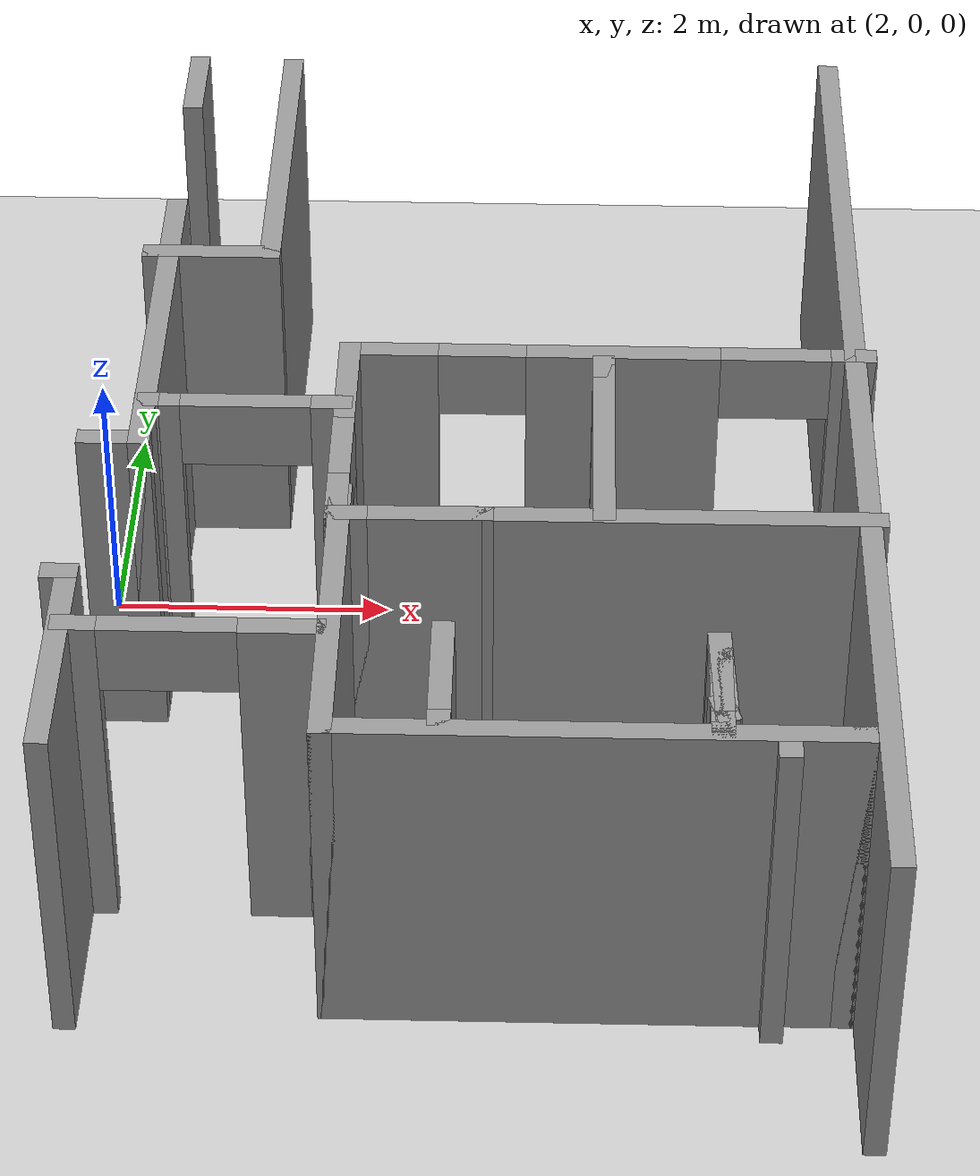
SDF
<sdf version="1.7">
 <world name="default">
  <model name="ground_plane">
   <static>1</static>
   <link name="link">
    <collision name="collision">
     <geometry><plane><normal>0 0 1</normal><size>100 100</size></plane></geometry>
     <surface>
      <contact><collide_bitmask>65535</collide_bitmask></contact>
      <friction><ode><mu>100</mu><mu2>50</mu2></ode></friction>
     </surface>
    </collision>
    <visual name="visual">
     <cast_shadows>0</cast_shadows>
     <geometry><plane><normal>0 0 1</normal><size>100 100</size></plane></geometry>
     <material>
      <script><uri>file://media/materials/scripts/gazebo.material</uri><name>Gazebo/Grey</name></script>
     </material>
    </visual>
   </link>
  </model>
  <model name="Floorplan4">
   <pose>0.528647 -1.59814 0 0 -0 0</pose>
   <link name="Wall_0">
    <collision name="Wall_0_Collision">
     <geometry><box><size>9 0.15 2.5</size></box></geometry>
     <pose>0 0 1.25 0 -0 0</pose>
    </collision>
    <visual name="Wall_0_Visual">
     <pose>0 0 1.25 0 -0 0</pose>
     <geometry><box><size>9 0.15 2.5</size></box></geometry>
     <material>
      <script><uri>file://media/materials/scripts/gazebo.material</uri><name>Gazebo/Grey</name></script>
      <ambient>1 1 1 1</ambient>
     </material>
     <meta><layer>0</layer></meta>
    </visual>
    <pose>6.77354 0.814241 0 0 -0 1.5708</pose>
   </link>
   <link name="Wall_11">
    <collision name="Wall_11_Collision">
     <geometry><box><size>0.75 0.15 2.5</size></box></geometry>
     <pose>0 0 1.25 0 -0 0</pose>
    </collision>
    <visual name="Wall_11_Visual">
     <pose>0 0 1.25 0 -0 0</pose>
     <geometry><box><size>0.75 0.15 2.5</size></box></geometry>
     <material>
      <script><uri>file://media/materials/scripts/gazebo.material</uri><name>Gazebo/Grey</name></script>
      <ambient>1 1 1 1</ambient>
     </material>
     <meta><layer>0</layer></meta>
    </visual>
    <pose>1.87688 4.95601 0 0 -0 1.5708</pose>
   </link>
   <link name="Wall_13">
    <collision name="Wall_13_Collision">
     <geometry><box><size>2.75 0.15 2.5</size></box></geometry>
     <pose>0 0 1.25 0 -0 0</pose>
    </collision>
    <visual name="Wall_13_Visual">
     <pose>0 0 1.25 0 -0 0</pose>
     <geometry><box><size>2.75 0.15 2.5</size></box></geometry>
     <material>
      <script><uri>file://media/materials/scripts/gazebo.material</uri><name>Gazebo/Grey</name></script>
      <ambient>1 1 1 1</ambient>
     </material>
     <meta><layer>0</layer></meta>
    </visual>
    <pose>2.60855 3.92948 0 0 -0 -1.5708</pose>
   </link>
   <link name="Wall_14">
    <collision name="Wall_14_Collision">
     <geometry><box><size>1 0.15 2.5</size></box></geometry>
     <pose>0 0 1.25 0 -0 0</pose>
    </collision>
    <visual name="Wall_14_Visual">
     <pose>0 0 1.25 0 -0 0</pose>
     <geometry><box><size>1 0.15 2.5</size></box></geometry>
     <material>
      <script><uri>file://media/materials/scripts/gazebo.material</uri><name>Gazebo/Grey</name></script>
      <ambient>1 1 1 1</ambient>
     </material>
     <meta><layer>0</layer></meta>
    </visual>
    <pose>2.18355 2.62948 0 0 -0 3.14159</pose>
   </link>
   <link name="Wall_15">
    <collision name="Wall_15_Collision">
     <geometry><box><size>0.15 0.15 2.5</size></box></geometry>
     <pose>0 0 1.25 0 -0 0</pose>
    </collision>
    <visual name="Wall_15_Visual">
     <pose>0 0 1.25 0 -0 0</pose>
     <geometry><box><size>0.15 0.15 2.5</size></box></geometry>
     <material>
      <script><uri>file://media/materials/scripts/gazebo.material</uri><name>Gazebo/Grey</name></script>
      <ambient>1 1 1 1</ambient>
     </material>
     <meta><layer>0</layer></meta>
    </visual>
    <pose>1.75855 2.62948 0 0 -0 0</pose>
   </link>
   <link name="Wall_17">
    <collision name="Wall_17_Collision">
     <geometry><box><size>3 0.15 2.5</size></box></geometry>
     <pose>0 0 1.25 0 -0 0</pose>
    </collision>
    <visual name="Wall_17_Visual">
     <pose>0 0 1.25 0 -0 0</pose>
     <geometry><box><size>3 0.15 2.5</size></box></geometry>
     <material>
      <script><uri>file://media/materials/scripts/gazebo.material</uri><name>Gazebo/Grey</name></script>
      <ambient>1 1 1 1</ambient>
     </material>
     <meta><layer>0</layer></meta>
    </visual>
    <pose>1.87688 1.80723 0 0 -0 -1.5708</pose>
   </link>
   <link name="Wall_18">
    <collision name="Wall_18_Collision">
     <geometry><box><size>0.5 0.15 2.5</size></box></geometry>
     <pose>0 0 1.25 0 -0 0</pose>
    </collision>
    <visual name="Wall_18_Visual">
     <pose>0 0 1.25 0 -0 0</pose>
     <geometry><box><size>0.5 0.15 2.5</size></box></geometry>
     <material>
      <script><uri>file://media/materials/scripts/gazebo.material</uri><name>Gazebo/Grey</name></script>
      <ambient>1 1 1 1</ambient>
     </material>
     <meta><layer>0</layer></meta>
    </visual>
    <pose>1.70188 0.38223 0 0 -0 3.14159</pose>
   </link>
   <link name="Wall_28">
    <collision name="Wall_28_Collision">
     <geometry><box><size>0.25 0.15 2.5</size></box></geometry>
     <pose>0 0 1.25 0 -0 0</pose>
    </collision>
    <visual name="Wall_28_Visual">
     <pose>0 0 1.25 0 -0 0</pose>
     <geometry><box><size>0.25 0.15 2.5</size></box></geometry>
     <material>
      <script><uri>file://media/materials/scripts/gazebo.material</uri><name>Gazebo/Grey</name></script>
      <ambient>1 1 1 1</ambient>
     </material>
     <meta><layer>0</layer></meta>
    </visual>
    <pose>1.49972 -1.05601 0 0 -0 0</pose>
   </link>
   <link name="Wall_29">
    <collision name="Wall_29_Collision">
     <geometry><box><size>1.75 0.15 2.5</size></box></geometry>
     <pose>0 0 1.25 0 -0 0</pose>
    </collision>
    <visual name="Wall_29_Visual">
     <pose>0 0 1.25 0 -0 0</pose>
     <geometry><box><size>1.75 0.15 2.5</size></box></geometry>
     <material>
      <script><uri>file://media/materials/scripts/gazebo.material</uri><name>Gazebo/Grey</name></script>
      <ambient>1 1 1 1</ambient>
     </material>
     <meta><layer>0</layer></meta>
    </visual>
    <pose>1.54972 -1.85601 0 0 -0 -1.5708</pose>
   </link>
   <link name="Wall_3">
    <collision name="Wall_3_Collision">
     <geometry><box><size>0.15 0.15 2.5</size></box></geometry>
     <pose>0 0 1.25 0 -0 0</pose>
    </collision>
    <visual name="Wall_3_Visual">
     <pose>0 0 1.25 0 -0 0</pose>
     <geometry><box><size>0.15 0.15 2.5</size></box></geometry>
     <material>
      <script><uri>file://media/materials/scripts/gazebo.material</uri><name>Gazebo/Grey</name></script>
      <ambient>1 1 1 1</ambient>
     </material>
     <meta><layer>0</layer></meta>
    </visual>
    <pose>6.15788 -2.66213 0 0 -0 0</pose>
   </link>
   <link name="Wall_37">
    <pose>2.37196 -1.57624 0 0 -0 0</pose>
    <visual name="Wall_37_Visual_0">
     <pose>-0.726541 0 1.25 0 -0 0</pose>
     <geometry><box><size>0.296918 0.15 2.5</size></box></geometry>
     <material>
      <script><uri>file://media/materials/scripts/gazebo.material</uri><name>Gazebo/Grey</name></script>
      <ambient>1 1 1 1</ambient>
     </material>
     <meta><layer>0</layer></meta>
    </visual>
    <collision name="Wall_37_Collision_0">
     <geometry><box><size>0.296918 0.15 2.5</size></box></geometry>
     <pose>-0.726541 0 1.25 0 -0 0</pose>
    </collision>
    <visual name="Wall_37_Visual_1">
     <pose>0.598459 0 1.25 0 -0 0</pose>
     <geometry><box><size>0.553082 0.15 2.5</size></box></geometry>
     <material>
      <script><uri>file://media/materials/scripts/gazebo.material</uri><name>Gazebo/Grey</name></script>
      <ambient>1 1 1 1</ambient>
     </material>
     <meta><layer>0</layer></meta>
    </visual>
    <collision name="Wall_37_Collision_1">
     <geometry><box><size>0.553082 0.15 2.5</size></box></geometry>
     <pose>0.598459 0 1.25 0 -0 0</pose>
    </collision>
    <visual name="Wall_37_Visual_2">
     <pose>-0.128082 0 2.25 0 -0 0</pose>
     <geometry><box><size>0.9 0.15 0.5</size></box></geometry>
     <material>
      <script><uri>file://media/materials/scripts/gazebo.material</uri><name>Gazebo/Grey</name></script>
      <ambient>1 1 1 1</ambient>
     </material>
     <meta><layer>0</layer></meta>
    </visual>
    <collision name="Wall_37_Collision_2">
     <geometry><box><size>0.9 0.15 0.5</size></box></geometry>
     <pose>-0.128082 0 2.25 0 -0 0</pose>
    </collision>
   </link>
   <link name="Wall_38">
    <collision name="Wall_38_Collision">
     <geometry><box><size>0.15 0.15 2.5</size></box></geometry>
     <pose>0 0 1.25 0 -0 0</pose>
    </collision>
    <visual name="Wall_38_Visual">
     <pose>0 0 1.25 0 -0 0</pose>
     <geometry><box><size>0.15 0.15 2.5</size></box></geometry>
     <material>
      <script><uri>file://media/materials/scripts/gazebo.material</uri><name>Gazebo/Grey</name></script>
      <ambient>1 1 1 1</ambient>
     </material>
     <meta><layer>0</layer></meta>
    </visual>
    <pose>3.18182 -1.57624 0 0 -0 0</pose>
   </link>
   <link name="Wall_40">
    <collision name="Wall_40_Collision">
     <geometry><box><size>2.5 0.15 2.5</size></box></geometry>
     <pose>0 0 1.25 0 -0 0</pose>
    </collision>
    <visual name="Wall_40_Visual">
     <pose>0 0 1.25 0 -0 0</pose>
     <geometry><box><size>2.5 0.15 2.5</size></box></geometry>
     <material>
      <script><uri>file://media/materials/scripts/gazebo.material</uri><name>Gazebo/Grey</name></script>
      <ambient>1 1 1 1</ambient>
     </material>
     <meta><layer>0</layer></meta>
    </visual>
    <pose>3.27302 -1.3413 0 0 -0 -1.5708</pose>
   </link>
   <link name="Wall_41">
    <collision name="Wall_41_Collision">
     <geometry><box><size>3.5 0.15 2.5</size></box></geometry>
     <pose>0 0 1.25 0 -0 0</pose>
    </collision>
    <visual name="Wall_41_Visual">
     <pose>0 0 1.25 0 -0 0</pose>
     <geometry><box><size>3.5 0.15 2.5</size></box></geometry>
     <material>
      <script><uri>file://media/materials/scripts/gazebo.material</uri><name>Gazebo/Grey</name></script>
      <ambient>1 1 1 1</ambient>
     </material>
     <meta><layer>0</layer></meta>
    </visual>
    <pose>4.94802 -2.5163 0 0 -0 0</pose>
   </link>
   <link name="Wall_42">
    <collision name="Wall_42_Collision">
     <geometry><box><size>0.15 0.15 2.5</size></box></geometry>
     <pose>0 0 1.25 0 -0 0</pose>
    </collision>
    <visual name="Wall_42_Visual">
     <pose>0 0 1.25 0 -0 0</pose>
     <geometry><box><size>0.15 0.15 2.5</size></box></geometry>
     <material>
      <script><uri>file://media/materials/scripts/gazebo.material</uri><name>Gazebo/Grey</name></script>
      <ambient>1 1 1 1</ambient>
     </material>
     <meta><layer>0</layer></meta>
    </visual>
    <pose>6.62302 -2.5163 0 0 -0 0</pose>
   </link>
   <link name="Wall_44">
    <collision name="Wall_44_Collision">
     <geometry><box><size>1 0.15 2.5</size></box></geometry>
     <pose>0 0 1.25 0 -0 0</pose>
    </collision>
    <visual name="Wall_44_Visual">
     <pose>0 0 1.25 0 -0 0</pose>
     <geometry><box><size>1 0.15 2.5</size></box></geometry>
     <material>
      <script><uri>file://media/materials/scripts/gazebo.material</uri><name>Gazebo/Grey</name></script>
      <ambient>1 1 1 1</ambient>
     </material>
     <meta><layer>0</layer></meta>
    </visual>
    <pose>4.00073 -2.00124 0 0 -0 -1.5708</pose>
   </link>
   <link name="Wall_45">
    <collision name="Wall_45_Collision">
     <geometry><box><size>0.15 0.15 2.5</size></box></geometry>
     <pose>0 0 1.25 0 -0 0</pose>
    </collision>
    <visual name="Wall_45_Visual">
     <pose>0 0 1.25 0 -0 0</pose>
     <geometry><box><size>0.15 0.15 2.5</size></box></geometry>
     <material>
      <script><uri>file://media/materials/scripts/gazebo.material</uri><name>Gazebo/Grey</name></script>
      <ambient>1 1 1 1</ambient>
     </material>
     <meta><layer>0</layer></meta>
    </visual>
    <pose>4.00073 -2.42624 0 0 -0 0</pose>
   </link>
   <link name="Wall_47">
    <collision name="Wall_47_Collision">
     <geometry><box><size>0.75 0.15 2.5</size></box></geometry>
     <pose>0 0 1.25 0 -0 0</pose>
    </collision>
    <visual name="Wall_47_Visual">
     <pose>0 0 1.25 0 -0 0</pose>
     <geometry><box><size>0.75 0.15 2.5</size></box></geometry>
     <material>
      <script><uri>file://media/materials/scripts/gazebo.material</uri><name>Gazebo/Grey</name></script>
      <ambient>1 1 1 1</ambient>
     </material>
     <meta><layer>0</layer></meta>
    </visual>
    <pose>5.75179 -1.94446 0 0 -0 -1.5708</pose>
   </link>
   <link name="Wall_48">
    <collision name="Wall_48_Collision">
     <geometry><box><size>0.25 0.15 2.5</size></box></geometry>
     <pose>0 0 1.25 0 -0 0</pose>
    </collision>
    <visual name="Wall_48_Visual">
     <pose>0 0 1.25 0 -0 0</pose>
     <geometry><box><size>0.25 0.15 2.5</size></box></geometry>
     <material>
      <script><uri>file://media/materials/scripts/gazebo.material</uri><name>Gazebo/Grey</name></script>
      <ambient>1 1 1 1</ambient>
     </material>
     <meta><layer>0</layer></meta>
    </visual>
    <pose>5.76473 -2.29276 0 0 -0 -1.309</pose>
   </link>
   <link name="Wall_50">
    <collision name="Wall_50_Collision">
     <geometry><box><size>0.847073 0.15 2.5</size></box></geometry>
     <pose>0 0 1.25 0 -0 0</pose>
    </collision>
    <visual name="Wall_50_Visual">
     <pose>0 0 1.25 0 -0 0</pose>
     <geometry><box><size>0.847073 0.15 2.5</size></box></geometry>
     <material>
      <script><uri>file://media/materials/scripts/gazebo.material</uri><name>Gazebo/Grey</name></script>
      <ambient>1 1 1 1</ambient>
     </material>
     <meta><layer>0</layer></meta>
    </visual>
    <pose>5.76473 -1.99276 0 0 -0 1.60793</pose>
   </link>
   <link name="Wall_51">
    <collision name="Wall_51_Collision">
     <geometry><box><size>1 0.15 2.5</size></box></geometry>
     <pose>0 0 1.25 0 -0 0</pose>
    </collision>
    <visual name="Wall_51_Visual">
     <pose>0 0 1.25 0 -0 0</pose>
     <geometry><box><size>1 0.15 2.5</size></box></geometry>
     <material>
      <script><uri>file://media/materials/scripts/gazebo.material</uri><name>Gazebo/Grey</name></script>
      <ambient>1 1 1 1</ambient>
     </material>
     <meta><layer>0</layer></meta>
    </visual>
    <pose>5.75179 -2.06946 0 0 -0 -1.5708</pose>
   </link>
   <link name="Wall_52">
    <collision name="Wall_52_Collision">
     <geometry><box><size>0.15 0.15 2.5</size></box></geometry>
     <pose>0 0 1.25 0 -0 0</pose>
    </collision>
    <visual name="Wall_52_Visual">
     <pose>0 0 1.25 0 -0 0</pose>
     <geometry><box><size>0.15 0.15 2.5</size></box></geometry>
     <material>
      <script><uri>file://media/materials/scripts/gazebo.material</uri><name>Gazebo/Grey</name></script>
      <ambient>1 1 1 1</ambient>
     </material>
     <meta><layer>0</layer></meta>
    </visual>
    <pose>5.75179 -2.49446 0 0 -0 0</pose>
   </link>
   <link name="Wall_54">
    <collision name="Wall_54_Collision">
     <geometry><box><size>2.75 0.15 2.5</size></box></geometry>
     <pose>0 0 1.25 0 -0 0</pose>
    </collision>
    <visual name="Wall_54_Visual">
     <pose>0 0 1.25 0 -0 0</pose>
     <geometry><box><size>2.75 0.15 2.5</size></box></geometry>
     <material>
      <script><uri>file://media/materials/scripts/gazebo.material</uri><name>Gazebo/Grey</name></script>
      <ambient>1 1 1 1</ambient>
     </material>
     <meta><layer>0</layer></meta>
    </visual>
    <pose>5.52062 -0.393709 0 0 -0 3.14159</pose>
   </link>
   <link name="Wall_55">
    <collision name="Wall_55_Collision">
     <geometry><box><size>0.15 0.15 2.5</size></box></geometry>
     <pose>0 0 1.25 0 -0 0</pose>
    </collision>
    <visual name="Wall_55_Visual">
     <pose>0 0 1.25 0 -0 0</pose>
     <geometry><box><size>0.15 0.15 2.5</size></box></geometry>
     <material>
      <script><uri>file://media/materials/scripts/gazebo.material</uri><name>Gazebo/Grey</name></script>
      <ambient>1 1 1 1</ambient>
     </material>
     <meta><layer>0</layer></meta>
    </visual>
    <pose>4.22061 -0.393709 0 0 -0 0</pose>
   </link>
   <link name="Wall_57">
    <pose>3.73545 -0.397699 0 0 -0 -3.13337</pose>
    <visual name="Wall_57_Visual_0">
     <pose>0 0 1.25 0 -0 0</pose>
     <geometry><box><size>1.12037 0.15 2.5</size></box></geometry>
     <material>
      <script><uri>file://media/materials/scripts/gazebo.material</uri><name>Gazebo/Grey</name></script>
      <ambient>1 1 1 1</ambient>
     </material>
     <meta><layer>0</layer></meta>
    </visual>
    <collision name="Wall_57_Collision_0">
     <geometry><box><size>1.12037 0.15 2.5</size></box></geometry>
     <pose>0 0 1.25 0 -0 0</pose>
    </collision>
    <visual name="Wall_57_Visual_1">
     <pose>0.417275 0 1.25 0 -0 0</pose>
     <geometry><box><size>0.285819 0.15 2.5</size></box></geometry>
     <material>
      <script><uri>file://media/materials/scripts/gazebo.material</uri><name>Gazebo/Grey</name></script>
      <ambient>1 1 1 1</ambient>
     </material>
     <meta><layer>0</layer></meta>
    </visual>
    <collision name="Wall_57_Collision_1">
     <geometry><box><size>0.285819 0.15 2.5</size></box></geometry>
     <pose>0.417275 0 1.25 0 -0 0</pose>
    </collision>
   </link>
   <link name="Wall_58">
    <collision name="Wall_58_Collision">
     <geometry><box><size>0.15 0.15 2.5</size></box></geometry>
     <pose>0 0 1.25 0 -0 0</pose>
    </collision>
    <visual name="Wall_58_Visual">
     <pose>0 0 1.25 0 -0 0</pose>
     <geometry><box><size>0.15 0.15 2.5</size></box></geometry>
     <material>
      <script><uri>file://media/materials/scripts/gazebo.material</uri><name>Gazebo/Grey</name></script>
      <ambient>1 1 1 1</ambient>
     </material>
     <meta><layer>0</layer></meta>
    </visual>
    <pose>3.25028 -0.401688 0 0 -0 0</pose>
   </link>
   <link name="Wall_60">
    <pose>5.05028 1.44831 0 0 -0 0</pose>
    <visual name="Wall_60_Visual_0">
     <pose>-1.52818 0 1.25 0 -0 0</pose>
     <geometry><box><size>0.693647 0.15 2.5</size></box></geometry>
     <material>
      <script><uri>file://media/materials/scripts/gazebo.material</uri><name>Gazebo/Grey</name></script>
      <ambient>1 1 1 1</ambient>
     </material>
     <meta><layer>0</layer></meta>
    </visual>
    <collision name="Wall_60_Collision_0">
     <geometry><box><size>0.693647 0.15 2.5</size></box></geometry>
     <pose>-1.52818 0 1.25 0 -0 0</pose>
    </collision>
    <visual name="Wall_60_Visual_1">
     <pose>0.109387 0 1.25 0 -0 0</pose>
     <geometry><box><size>1.35501 0.15 2.5</size></box></geometry>
     <material>
      <script><uri>file://media/materials/scripts/gazebo.material</uri><name>Gazebo/Grey</name></script>
      <ambient>1 1 1 1</ambient>
     </material>
     <meta><layer>0</layer></meta>
    </visual>
    <collision name="Wall_60_Collision_1">
     <geometry><box><size>1.35501 0.15 2.5</size></box></geometry>
     <pose>0.109387 0 1.25 0 -0 0</pose>
    </collision>
    <visual name="Wall_60_Visual_2">
     <pose>1.71577 0 1.25 0 -0 0</pose>
     <geometry><box><size>0.318456 0.15 2.5</size></box></geometry>
     <material>
      <script><uri>file://media/materials/scripts/gazebo.material</uri><name>Gazebo/Grey</name></script>
      <ambient>1 1 1 1</ambient>
     </material>
     <meta><layer>0</layer></meta>
    </visual>
    <collision name="Wall_60_Collision_2">
     <geometry><box><size>0.318456 0.15 2.5</size></box></geometry>
     <pose>1.71577 0 1.25 0 -0 0</pose>
    </collision>
    <visual name="Wall_60_Visual_3">
     <pose>-0.874735 0 2.25 0 -0 0</pose>
     <geometry><box><size>0.613236 0.15 0.5</size></box></geometry>
     <material>
      <script><uri>file://media/materials/scripts/gazebo.material</uri><name>Gazebo/Grey</name></script>
      <ambient>1 1 1 1</ambient>
     </material>
     <meta><layer>0</layer></meta>
    </visual>
    <collision name="Wall_60_Collision_3">
     <geometry><box><size>0.613236 0.15 0.5</size></box></geometry>
     <pose>-0.874735 0 2.25 0 -0 0</pose>
    </collision>
    <visual name="Wall_60_Visual_4">
     <pose>1.17172 0 2.25 0 -0 0</pose>
     <geometry><box><size>0.769653 0.15 0.5</size></box></geometry>
     <material>
      <script><uri>file://media/materials/scripts/gazebo.material</uri><name>Gazebo/Grey</name></script>
      <ambient>1 1 1 1</ambient>
     </material>
     <meta><layer>0</layer></meta>
    </visual>
    <collision name="Wall_60_Collision_4">
     <geometry><box><size>0.769653 0.15 0.5</size></box></geometry>
     <pose>1.17172 0 2.25 0 -0 0</pose>
    </collision>
   </link>
   <link name="Wall_61">
    <collision name="Wall_61_Collision">
     <geometry><box><size>0.15 0.15 2.5</size></box></geometry>
     <pose>0 0 1.25 0 -0 0</pose>
    </collision>
    <visual name="Wall_61_Visual">
     <pose>0 0 1.25 0 -0 0</pose>
     <geometry><box><size>0.15 0.15 2.5</size></box></geometry>
     <material>
      <script><uri>file://media/materials/scripts/gazebo.material</uri><name>Gazebo/Grey</name></script>
      <ambient>1 1 1 1</ambient>
     </material>
     <meta><layer>0</layer></meta>
    </visual>
    <pose>6.85028 1.44831 0 0 -0 0</pose>
   </link>
   <link name="Wall_63">
    <collision name="Wall_63_Collision">
     <geometry><box><size>1.75 0.15 2.5</size></box></geometry>
     <pose>0 0 1.25 0 -0 0</pose>
    </collision>
    <visual name="Wall_63_Visual">
     <pose>0 0 1.25 0 -0 0</pose>
     <geometry><box><size>1.75 0.15 2.5</size></box></geometry>
     <material>
      <script><uri>file://media/materials/scripts/gazebo.material</uri><name>Gazebo/Grey</name></script>
      <ambient>1 1 1 1</ambient>
     </material>
     <meta><layer>0</layer></meta>
    </visual>
    <pose>5.02408 0.429032 0 0 -0 1.5708</pose>
   </link>
   <link name="Wall_64">
    <collision name="Wall_64_Collision">
     <geometry><box><size>0.25 0.15 2.5</size></box></geometry>
     <pose>0 0 1.25 0 -0 0</pose>
    </collision>
    <visual name="Wall_64_Visual">
     <pose>0 0 1.25 0 -0 0</pose>
     <geometry><box><size>0.25 0.15 2.5</size></box></geometry>
     <material>
      <script><uri>file://media/materials/scripts/gazebo.material</uri><name>Gazebo/Grey</name></script>
      <ambient>1 1 1 1</ambient>
     </material>
     <meta><layer>0</layer></meta>
    </visual>
    <pose>5.02408 1.27903 0 0 -0 1.5708</pose>
   </link>
   <link name="Wall_66">
    <collision name="Wall_66_Collision">
     <geometry><box><size>0.15 0.15 2.5</size></box></geometry>
     <pose>0 0 1.25 0 -0 0</pose>
    </collision>
    <visual name="Wall_66_Visual">
     <pose>0 0 1.25 0 -0 0</pose>
     <geometry><box><size>0.15 0.15 2.5</size></box></geometry>
     <material>
      <script><uri>file://media/materials/scripts/gazebo.material</uri><name>Gazebo/Grey</name></script>
      <ambient>1 1 1 1</ambient>
     </material>
     <meta><layer>0</layer></meta>
    </visual>
    <pose>3.25028 -0.401688 0 0 -0 0</pose>
   </link>
   <link name="Wall_67">
    <collision name="Wall_67_Collision">
     <geometry><box><size>0.15 0.15 2.5</size></box></geometry>
     <pose>0 0 1.25 0 -0 0</pose>
    </collision>
    <visual name="Wall_67_Visual">
     <pose>0 0 1.25 0 -0 0</pose>
     <geometry><box><size>0.15 0.15 2.5</size></box></geometry>
     <material>
      <script><uri>file://media/materials/scripts/gazebo.material</uri><name>Gazebo/Grey</name></script>
      <ambient>1 1 1 1</ambient>
     </material>
     <meta><layer>0</layer></meta>
    </visual>
    <pose>3.25028 -0.401688 0 0 -0 0</pose>
   </link>
   <link name="Wall_68">
    <pose>3.25028 0.523312 0 0 -0 1.5708</pose>
    <visual name="Wall_68_Visual_0">
     <pose>-0.752521 0 1.25 0 -0 0</pose>
     <geometry><box><size>0.494958 0.15 2.5</size></box></geometry>
     <material>
      <script><uri>file://media/materials/scripts/gazebo.material</uri><name>Gazebo/Grey</name></script>
      <ambient>1 1 1 1</ambient>
     </material>
     <meta><layer>0</layer></meta>
    </visual>
    <collision name="Wall_68_Collision_0">
     <geometry><box><size>0.494958 0.15 2.5</size></box></geometry>
     <pose>-0.752521 0 1.25 0 -0 0</pose>
    </collision>
    <visual name="Wall_68_Visual_1">
     <pose>0.560614 0 1.25 0 -0 0</pose>
     <geometry><box><size>0.878771 0.15 2.5</size></box></geometry>
     <material>
      <script><uri>file://media/materials/scripts/gazebo.material</uri><name>Gazebo/Grey</name></script>
      <ambient>1 1 1 1</ambient>
     </material>
     <meta><layer>0</layer></meta>
    </visual>
    <collision name="Wall_68_Collision_1">
     <geometry><box><size>0.878771 0.15 2.5</size></box></geometry>
     <pose>0.560614 0 1.25 0 -0 0</pose>
    </collision>
    <visual name="Wall_68_Visual_2">
     <pose>-0.191906 0 2.25 0 -0 0</pose>
     <geometry><box><size>0.626271 0.15 0.5</size></box></geometry>
     <material>
      <script><uri>file://media/materials/scripts/gazebo.material</uri><name>Gazebo/Grey</name></script>
      <ambient>1 1 1 1</ambient>
     </material>
     <meta><layer>0</layer></meta>
    </visual>
    <collision name="Wall_68_Collision_2">
     <geometry><box><size>0.626271 0.15 0.5</size></box></geometry>
     <pose>-0.191906 0 2.25 0 -0 0</pose>
    </collision>
   </link>
   <link name="Wall_69">
    <collision name="Wall_69_Collision">
     <geometry><box><size>0.15 0.15 2.5</size></box></geometry>
     <pose>0 0 1.25 0 -0 0</pose>
    </collision>
    <visual name="Wall_69_Visual">
     <pose>0 0 1.25 0 -0 0</pose>
     <geometry><box><size>0.15 0.15 2.5</size></box></geometry>
     <material>
      <script><uri>file://media/materials/scripts/gazebo.material</uri><name>Gazebo/Grey</name></script>
      <ambient>1 1 1 1</ambient>
     </material>
     <meta><layer>0</layer></meta>
    </visual>
    <pose>3.25028 1.44831 0 0 -0 0</pose>
   </link>
   <link name="Wall_71">
    <pose>2.55036 0.816817 0 0 -0 3.14159</pose>
    <visual name="Wall_71_Visual_0">
     <pose>-0.607696 0 1.25 0 -0 0</pose>
     <geometry><box><size>0.284608 0.15 2.5</size></box></geometry>
     <material>
      <script><uri>file://media/materials/scripts/gazebo.material</uri><name>Gazebo/Grey</name></script>
      <ambient>1 1 1 1</ambient>
     </material>
     <meta><layer>0</layer></meta>
    </visual>
    <collision name="Wall_71_Collision_0">
     <geometry><box><size>0.284608 0.15 2.5</size></box></geometry>
     <pose>-0.607696 0 1.25 0 -0 0</pose>
    </collision>
    <visual name="Wall_71_Visual_1">
     <pose>0.592304 0 1.25 0 -0 0</pose>
     <geometry><box><size>0.315392 0.15 2.5</size></box></geometry>
     <material>
      <script><uri>file://media/materials/scripts/gazebo.material</uri><name>Gazebo/Grey</name></script>
      <ambient>1 1 1 1</ambient>
     </material>
     <meta><layer>0</layer></meta>
    </visual>
    <collision name="Wall_71_Collision_1">
     <geometry><box><size>0.315392 0.15 2.5</size></box></geometry>
     <pose>0.592304 0 1.25 0 -0 0</pose>
    </collision>
    <visual name="Wall_71_Visual_2">
     <pose>-0.015392 0 2.25 0 -0 0</pose>
     <geometry><box><size>0.9 0.15 0.5</size></box></geometry>
     <material>
      <script><uri>file://media/materials/scripts/gazebo.material</uri><name>Gazebo/Grey</name></script>
      <ambient>1 1 1 1</ambient>
     </material>
     <meta><layer>0</layer></meta>
    </visual>
    <collision name="Wall_71_Collision_2">
     <geometry><box><size>0.9 0.15 0.5</size></box></geometry>
     <pose>-0.015392 0 2.25 0 -0 0</pose>
    </collision>
   </link>
   <link name="Wall_72">
    <collision name="Wall_72_Collision">
     <geometry><box><size>0.15 0.15 2.5</size></box></geometry>
     <pose>0 0 1.25 0 -0 0</pose>
    </collision>
    <visual name="Wall_72_Visual">
     <pose>0 0 1.25 0 -0 0</pose>
     <geometry><box><size>0.15 0.15 2.5</size></box></geometry>
     <material>
      <script><uri>file://media/materials/scripts/gazebo.material</uri><name>Gazebo/Grey</name></script>
      <ambient>1 1 1 1</ambient>
     </material>
     <meta><layer>0</layer></meta>
    </visual>
    <pose>1.89514 0.816817 0 0 -0 0</pose>
   </link>
   <static>1</static>
  </model>
 </world>
</sdf>
